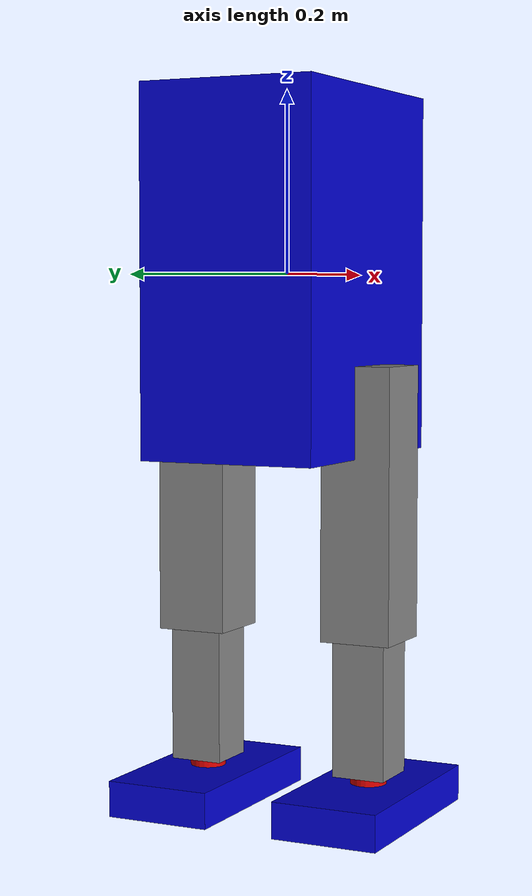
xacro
<?xml version="1.0"?>
<!-- humanoid_robot.urdf.xacro -->
<robot name="humanoid_robot" xmlns:xacro="http://www.ros.org/wiki/xacro">

  <!-- Constants -->
  <xacro:property name="PI" value="3.1415926535897931"/>

  <gazebo>
    <plugin name="gazebo_ros_control" filename="libgazebo_ros_control.so">
      <robotNamespace>/humanoid</robotNamespace>
    </plugin>
  </gazebo>

  <!-- Ensure robot spawns upright -->
  <gazebo reference="base_link">
    <pose>0 0 0.9 0 0 0</pose>
  </gazebo>

  <!-- Material definitions -->
  <material name="blue">
    <color rgba="0 0 0.8 1"/>
  </material>

  <material name="red">
    <color rgba="0.8 0 0 1"/>
  </material>

  <material name="grey">
    <color rgba="0.5 0.5 0.5 1"/>
  </material>

  <!-- Base Link (Torso) -->
  <link name="base_link">
    <visual>
      <geometry>
        <box size="0.3 0.2 0.4"/>
      </geometry>
      <material name="blue"/>
    </visual>
    <collision>
      <geometry>
        <box size="0.3 0.2 0.4"/>
      </geometry>
    </collision>
    <inertial>
      <mass value="10.0"/>
      <inertia ixx="0.4" iyy="0.4" izz="0.2" ixy="0" ixz="0" iyz="0"/>
    </inertial>
  </link>

  <!-- Left Hip Roll -->
  <joint name="hip_roll_left" type="revolute">
    <parent link="base_link"/>
    <child link="hip_left"/>
    <origin xyz="0 0.1 -0.2" rpy="0 0 0"/>
    <axis xyz="1 0 0"/>
    <limit lower="-0.5" upper="0.5" effort="100" velocity="10"/>
  </joint>

  <link name="hip_left">
    <visual>
      <geometry>
        <cylinder radius="0.03" length="0.1"/>
      </geometry>
      <material name="red"/>
    </visual>
    <collision>
      <geometry>
        <cylinder radius="0.03" length="0.1"/>
      </geometry>
    </collision>
    <inertial>
      <mass value="1.0"/>
      <inertia ixx="0.01" iyy="0.01" izz="0.01" ixy="0" ixz="0" iyz="0"/>
    </inertial>
  </link>

  <!-- Left Hip Pitch -->
  <joint name="hip_pitch_left" type="revolute">
    <parent link="hip_left"/>
    <child link="thigh_left"/>
    <origin xyz="0 0 -0.05" rpy="0 0 0"/>
    <axis xyz="0 1 0"/>
    <limit lower="-1.57" upper="1.57" effort="100" velocity="10"/>
  </joint>

  <link name="thigh_left">
    <visual>
      <geometry>
        <box size="0.08 0.08 0.3"/>
      </geometry>
      <material name="grey"/>
    </visual>
    <collision>
      <geometry>
        <box size="0.08 0.08 0.3"/>
      </geometry>
    </collision>
    <inertial>
      <mass value="2.0"/>
      <inertia ixx="0.02" iyy="0.02" izz="0.01" ixy="0" ixz="0" iyz="0"/>
    </inertial>
  </link>

  <!-- Left Knee -->
  <joint name="knee_left" type="revolute">
    <parent link="thigh_left"/>
    <child link="shin_left"/>
    <origin xyz="0 0 -0.15" rpy="0 0 0"/>
    <axis xyz="0 1 0"/>
    <limit lower="0" upper="2.5" effort="100" velocity="10"/>
  </joint>

  <link name="shin_left">
    <visual>
      <geometry>
        <box size="0.06 0.06 0.3"/>
      </geometry>
      <material name="grey"/>
    </visual>
    <collision>
      <geometry>
        <box size="0.06 0.06 0.3"/>
      </geometry>
    </collision>
    <inertial>
      <mass value="1.5"/>
      <inertia ixx="0.015" iyy="0.015" izz="0.01" ixy="0" ixz="0" iyz="0"/>
    </inertial>
  </link>

  <!-- Left Ankle Pitch -->
  <joint name="ankle_pitch_left" type="revolute">
    <parent link="shin_left"/>
    <child link="ankle_left"/>
    <origin xyz="0 0 -0.15" rpy="0 0 0"/>
    <axis xyz="0 1 0"/>
    <limit lower="-0.5" upper="0.5" effort="50" velocity="10"/>
  </joint>

  <link name="ankle_left">
    <visual>
      <geometry>
        <cylinder radius="0.02" length="0.06"/>
      </geometry>
      <material name="red"/>
    </visual>
    <collision>
      <geometry>
        <cylinder radius="0.02" length="0.06"/>
      </geometry>
    </collision>
    <inertial>
      <mass value="0.5"/>
      <inertia ixx="0.005" iyy="0.005" izz="0.005" ixy="0" ixz="0" iyz="0"/>
    </inertial>
  </link>

  <!-- Left Ankle Roll -->
  <joint name="ankle_roll_left" type="revolute">
    <parent link="ankle_left"/>
    <child link="foot_left"/>
    <origin xyz="0 0 -0.03" rpy="0 0 0"/>
    <axis xyz="1 0 0"/>
    <limit lower="-0.3" upper="0.3" effort="50" velocity="10"/>
  </joint>

  <link name="foot_left">
    <visual>
      <geometry>
        <box size="0.24 0.12 0.04"/>
      </geometry>
      <material name="blue"/>
    </visual>
    <collision name="foot_left_collision">
      <geometry>
        <box size="0.24 0.12 0.04"/>
      </geometry>
    </collision>
    <inertial>
      <mass value="0.8"/>
      <inertia ixx="0.008" iyy="0.008" izz="0.008" ixy="0" ixz="0" iyz="0"/>
    </inertial>
  </link>

  <!-- Right Hip Roll -->
  <joint name="hip_roll_right" type="revolute">
    <parent link="base_link"/>
    <child link="hip_right"/>
    <origin xyz="0 -0.1 -0.2" rpy="0 0 0"/>
    <axis xyz="1 0 0"/>
    <limit lower="-0.5" upper="0.5" effort="100" velocity="10"/>
  </joint>

  <link name="hip_right">
    <visual>
      <geometry>
        <cylinder radius="0.03" length="0.1"/>
      </geometry>
      <material name="red"/>
    </visual>
    <collision>
      <geometry>
        <cylinder radius="0.03" length="0.1"/>
      </geometry>
    </collision>
    <inertial>
      <mass value="1.0"/>
      <inertia ixx="0.01" iyy="0.01" izz="0.01" ixy="0" ixz="0" iyz="0"/>
    </inertial>
  </link>

  <!-- Right Hip Pitch -->
  <joint name="hip_pitch_right" type="revolute">
    <parent link="hip_right"/>
    <child link="thigh_right"/>
    <origin xyz="0 0 -0.05" rpy="0 0 0"/>
    <axis xyz="0 1 0"/>
    <limit lower="-1.57" upper="1.57" effort="100" velocity="10"/>
  </joint>

  <link name="thigh_right">
    <visual>
      <geometry>
        <box size="0.08 0.08 0.3"/>
      </geometry>
      <material name="grey"/>
    </visual>
    <collision>
      <geometry>
        <box size="0.08 0.08 0.3"/>
      </geometry>
    </collision>
    <inertial>
      <mass value="2.0"/>
      <inertia ixx="0.02" iyy="0.02" izz="0.01" ixy="0" ixz="0" iyz="0"/>
    </inertial>
  </link>

  <!-- Right Knee -->
  <joint name="knee_right" type="revolute">
    <parent link="thigh_right"/>
    <child link="shin_right"/>
    <origin xyz="0 0 -0.15" rpy="0 0 0"/>
    <axis xyz="0 1 0"/>
    <limit lower="0" upper="2.5" effort="100" velocity="10"/>
  </joint>

  <link name="shin_right">
    <visual>
      <geometry>
        <box size="0.06 0.06 0.3"/>
      </geometry>
      <material name="grey"/>
    </visual>
    <collision>
      <geometry>
        <box size="0.06 0.06 0.3"/>
      </geometry>
    </collision>
    <inertial>
      <mass value="1.5"/>
      <inertia ixx="0.015" iyy="0.015" izz="0.01" ixy="0" ixz="0" iyz="0"/>
    </inertial>
  </link>

  <!-- Right Ankle Pitch -->
  <joint name="ankle_pitch_right" type="revolute">
    <parent link="shin_right"/>
    <child link="ankle_right"/>
    <origin xyz="0 0 -0.15" rpy="0 0 0"/>
    <axis xyz="0 1 0"/>
    <limit lower="-0.5" upper="0.5" effort="50" velocity="10"/>
  </joint>

  <link name="ankle_right">
    <visual>
      <geometry>
        <cylinder radius="0.02" length="0.06"/>
      </geometry>
      <material name="red"/>
    </visual>
    <collision>
      <geometry>
        <cylinder radius="0.02" length="0.06"/>
      </geometry>
    </collision>
    <inertial>
      <mass value="0.5"/>
      <inertia ixx="0.005" iyy="0.005" izz="0.005" ixy="0" ixz="0" iyz="0"/>
    </inertial>
  </link>

  <!-- Right Ankle Roll -->
  <joint name="ankle_roll_right" type="revolute">
    <parent link="ankle_right"/>
    <child link="foot_right"/>
    <origin xyz="0 0 -0.03" rpy="0 0 0"/>
    <axis xyz="1 0 0"/>
    <limit lower="-0.3" upper="0.3" effort="50" velocity="10"/>
  </joint>

  <link name="foot_right">
    <visual>
      <geometry>
        <box size="0.24 0.12 0.04"/>
      </geometry>
      <material name="blue"/>
    </visual>
    <collision name="foot_right_collision">
      <geometry>
        <box size="0.24 0.12 0.04"/>
      </geometry>
    </collision>
    <inertial>
      <mass value="0.8"/>
      <inertia ixx="0.008" iyy="0.008" izz="0.008" ixy="0" ixz="0" iyz="0"/>
    </inertial>
  </link>

  <!-- IMU Sensor -->
  <gazebo reference="base_link">
    <sensor name="imu_sensor" type="imu">
      <always_on>true</always_on>
      <update_rate>200</update_rate>
      <visualize>true</visualize>
      <topic>__default_topic__</topic>
      <plugin filename="libgazebo_ros_imu_sensor.so" name="imu_plugin">
        <topicName>imu/data</topicName>
        <bodyName>base_link</bodyName>
        <updateRateHZ>200.0</updateRateHZ>
        <gaussianNoise>0.0</gaussianNoise>
        <xyzOffset>0 0 0</xyzOffset>
        <rpyOffset>0 0 0</rpyOffset>
        <frameName>base_link</frameName>
      </plugin>
    </sensor>
  </gazebo>

  <!-- Contact sensors for feet -->
  <gazebo reference="foot_left">
    <sensor name="foot_left_contact" type="contact">
      <always_on>true</always_on>
      <update_rate>200</update_rate>
      <contact>
        <collision>foot_left_collision</collision>
      </contact>
      <plugin name="foot_left_contact_plugin" filename="libgazebo_ros_bumper.so">
        <bumperTopicName>foot_left_contact</bumperTopicName>
        <frameName>foot_left</frameName>
      </plugin>
    </sensor>
  </gazebo>

  <gazebo reference="foot_right">
    <sensor name="foot_right_contact" type="contact">
      <always_on>true</always_on>
      <update_rate>200</update_rate>
      <contact>
        <collision>foot_right_collision</collision>
      </contact>
      <plugin name="foot_right_contact_plugin" filename="libgazebo_ros_bumper.so">
        <bumperTopicName>foot_right_contact</bumperTopicName>
        <frameName>foot_right</frameName>
      </plugin>
    </sensor>
  </gazebo>

  <!-- Transmissions for joints with effort controllers -->
  <transmission name="knee_left_trans">
    <type>transmission_interface/SimpleTransmission</type>
    <joint name="knee_left">
      <hardwareInterface>hardware_interface/EffortJointInterface</hardwareInterface>
    </joint>
    <actuator name="knee_left_motor">
      <hardwareInterface>hardware_interface/EffortJointInterface</hardwareInterface>
      <mechanicalReduction>1</mechanicalReduction>
    </actuator>
  </transmission>

  <transmission name="knee_right_trans">
    <type>transmission_interface/SimpleTransmission</type>
    <joint name="knee_right">
      <hardwareInterface>hardware_interface/EffortJointInterface</hardwareInterface>
    </joint>
    <actuator name="knee_right_motor">
      <hardwareInterface>hardware_interface/EffortJointInterface</hardwareInterface>
      <mechanicalReduction>1</mechanicalReduction>
    </actuator>
  </transmission>

  <transmission name="hip_pitch_left_trans">
    <type>transmission_interface/SimpleTransmission</type>
    <joint name="hip_pitch_left">
      <hardwareInterface>hardware_interface/EffortJointInterface</hardwareInterface>
    </joint>
    <actuator name="hip_pitch_left_motor">
      <hardwareInterface>hardware_interface/EffortJointInterface</hardwareInterface>
      <mechanicalReduction>1</mechanicalReduction>
    </actuator>
  </transmission>

  <transmission name="hip_pitch_right_trans">
    <type>transmission_interface/SimpleTransmission</type>
    <joint name="hip_pitch_right">
      <hardwareInterface>hardware_interface/EffortJointInterface</hardwareInterface>
    </joint>
    <actuator name="hip_pitch_right_motor">
      <hardwareInterface>hardware_interface/EffortJointInterface</hardwareInterface>
      <mechanicalReduction>1</mechanicalReduction>
    </actuator>
  </transmission>

  <transmission name="hip_roll_left_trans">
    <type>transmission_interface/SimpleTransmission</type>
    <joint name="hip_roll_left">
      <hardwareInterface>hardware_interface/EffortJointInterface</hardwareInterface>
    </joint>
    <actuator name="hip_roll_left_motor">
      <hardwareInterface>hardware_interface/EffortJointInterface</hardwareInterface>
      <mechanicalReduction>1</mechanicalReduction>
    </actuator>
  </transmission>

  <transmission name="hip_roll_right_trans">
    <type>transmission_interface/SimpleTransmission</type>
    <joint name="hip_roll_right">
      <hardwareInterface>hardware_interface/EffortJointInterface</hardwareInterface>
    </joint>
    <actuator name="hip_roll_right_motor">
      <hardwareInterface>hardware_interface/EffortJointInterface</hardwareInterface>
      <mechanicalReduction>1</mechanicalReduction>
    </actuator>
  </transmission>

  <!-- Ankle joints remain effort-based -->
  <transmission name="ankle_pitch_left_trans">
    <type>transmission_interface/SimpleTransmission</type>
    <joint name="ankle_pitch_left">
      <hardwareInterface>hardware_interface/EffortJointInterface</hardwareInterface>
    </joint>
    <actuator name="ankle_pitch_left_motor">
      <hardwareInterface>hardware_interface/EffortJointInterface</hardwareInterface>
      <mechanicalReduction>1</mechanicalReduction>
    </actuator>
  </transmission>

  <transmission name="ankle_pitch_right_trans">
    <type>transmission_interface/SimpleTransmission</type>
    <joint name="ankle_pitch_right">
      <hardwareInterface>hardware_interface/EffortJointInterface</hardwareInterface>
    </joint>
    <actuator name="ankle_pitch_right_motor">
      <hardwareInterface>hardware_interface/EffortJointInterface</hardwareInterface>
      <mechanicalReduction>1</mechanicalReduction>
    </actuator>
  </transmission>

  <transmission name="ankle_roll_left_trans">
    <type>transmission_interface/SimpleTransmission</type>
    <joint name="ankle_roll_left">
      <hardwareInterface>hardware_interface/EffortJointInterface</hardwareInterface>
    </joint>
    <actuator name="ankle_roll_left_motor">
      <hardwareInterface>hardware_interface/EffortJointInterface</hardwareInterface>
      <mechanicalReduction>1</mechanicalReduction>
    </actuator>
  </transmission>

  <transmission name="ankle_roll_right_trans">
    <type>transmission_interface/SimpleTransmission</type>
    <joint name="ankle_roll_right">
      <hardwareInterface>hardware_interface/EffortJointInterface</hardwareInterface>
    </joint>
    <actuator name="ankle_roll_right_motor">
      <hardwareInterface>hardware_interface/EffortJointInterface</hardwareInterface>
      <mechanicalReduction>1</mechanicalReduction>
    </actuator>
  </transmission>

</robot>
